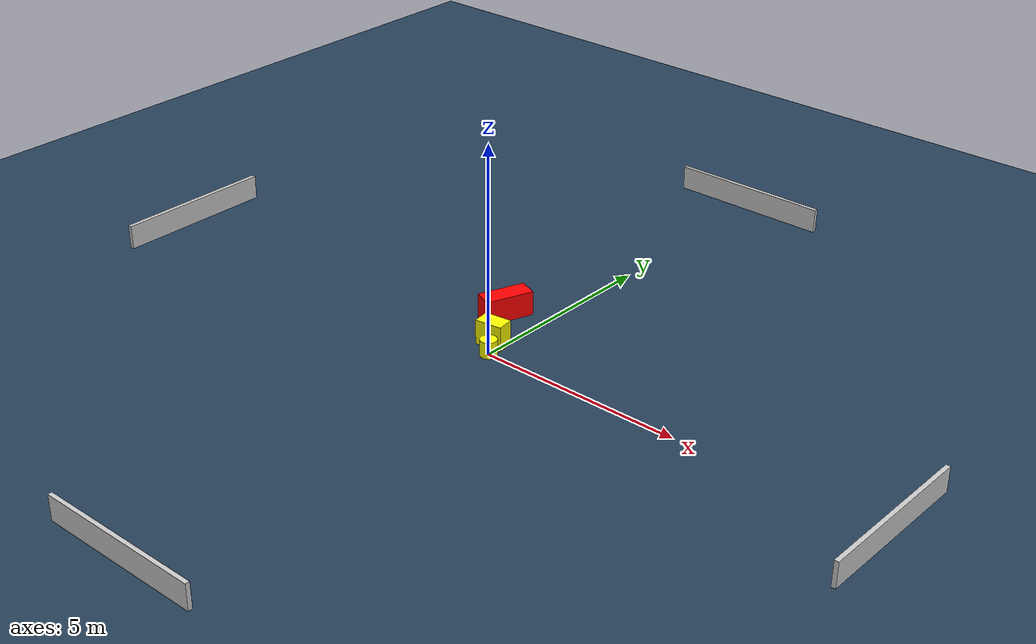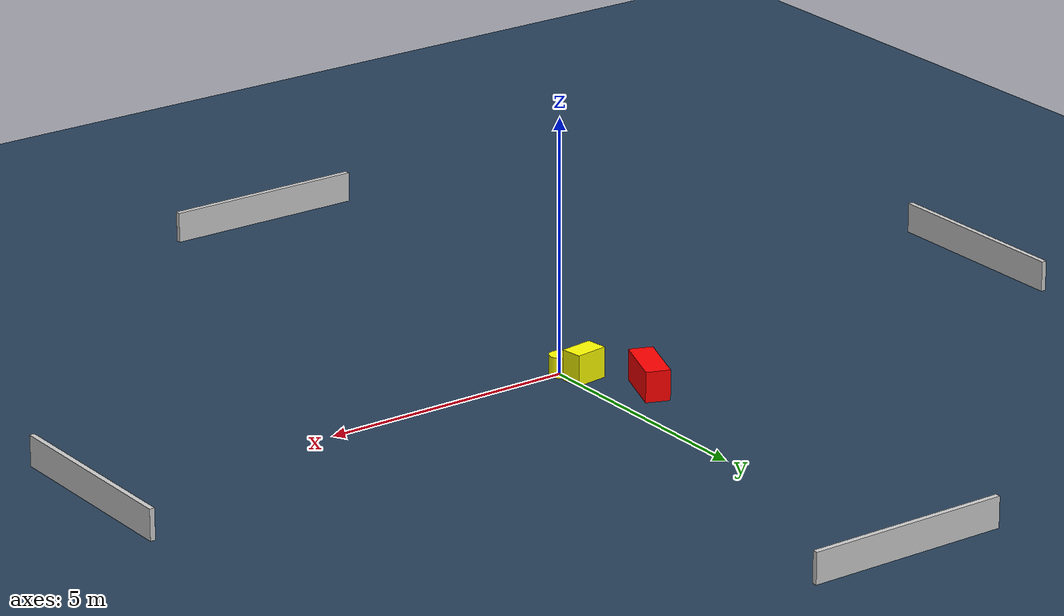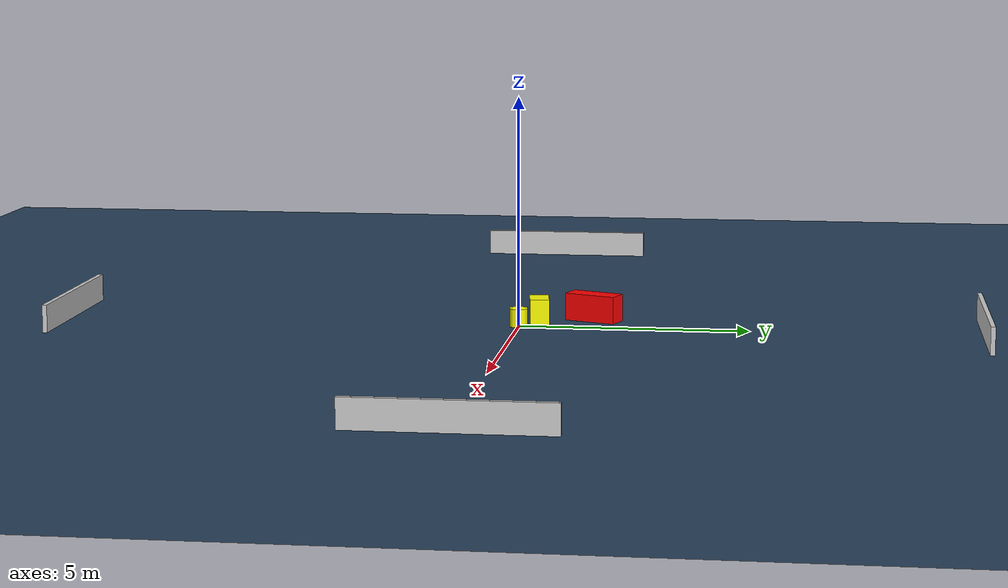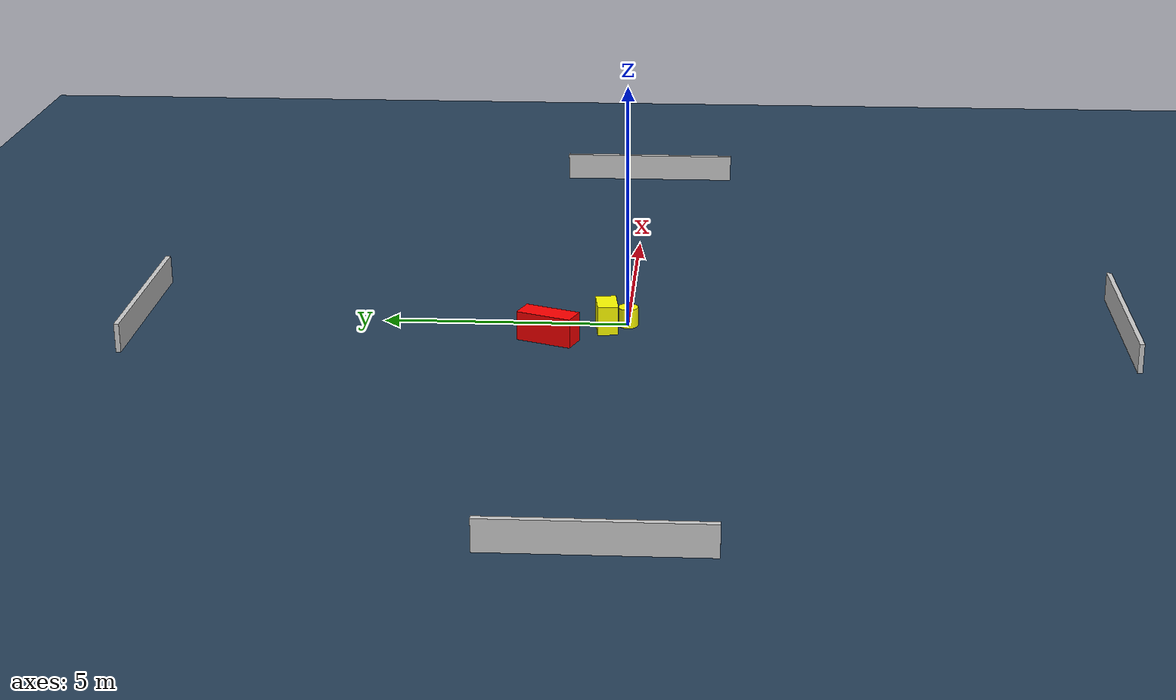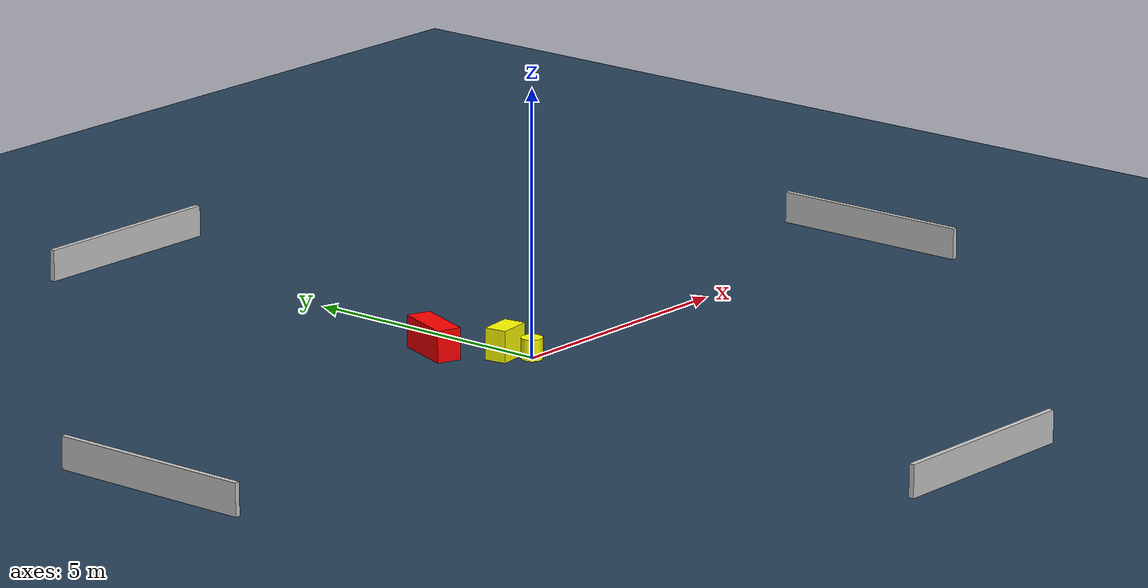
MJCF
<?xml version="1.0" ?>
<mujoco model="generated_environment">
  <option timestep="0.01" integrator="RK4" cone="elliptic"/>
  <default>
    <geom density="1"/>
  </default>
  <asset>
    <texture builtin="gradient" height="3072" name="skybox" rgb1="0.3 0.5 0.7" rgb2="0 0 0" type="skybox" width="512"/>
    <texture builtin="checker" height="300" name="groundplane" rgb1="0.2 0.3 0.4" rgb2="0.1 0.2 0.3" type="2d" width="300"/>
    <material name="groundplane" reflectance="0.2" texrepeat="5 5" texture="groundplane"/>
  </asset>
  <worldbody>
    <light dir="0 0 -1" directional="true" pos="0 0 1.5"/>
    <geom condim="3" friction="0.5 0.005 0.001" material="groundplane" name="floor" pos="0 0 0" size="0 0 0.05" type="plane"/>
    <body name="walls">
      <geom name="wall_1" condim="4" pos="-10.0 0.0 0.3" rgba="0.800000011920929 0.800000011920929 0.800000011920929 1.0" size="0.05 2.0 0.3" type="box"/>
      <geom name="wall_2" condim="4" pos="10.0 0.0 0.3" rgba="0.800000011920929 0.800000011920929 0.800000011920929 1.0" size="0.05 2.0 0.3" type="box"/>
      <geom name="wall_3" condim="4" pos="0.0 -10.0 0.3" rgba="0.800000011920929 0.800000011920929 0.800000011920929 1.0" size="2.0 0.05 0.3" type="box"/>
      <geom name="wall_4" condim="4" pos="0.0 10.0 0.3" rgba="0.800000011920929 0.800000011920929 0.800000011920929 1.0" size="2.0 0.05 0.3" type="box"/>
    </body>
    <body name="robot">
      <joint name="joint_x" type="slide" pos="0 0 0" axis="1 0 0"/>
      <joint name="joint_y" type="slide" pos="0 0 0" axis="0 1 0"/>
      <geom name="robot" type="cylinder" pos="0.0 0.0 0.2" size="0.2 0.2 0.0" mass="5.0" friction="1.0 0.005 0.0001" condim="4" rgba="1.0 1.0 0.0 1.0"/>
    </body>
    <body name="obstacle_1_movable">
      <geom name="obstacle_1_movable" condim="4" pos="-0.24482108053133508 0.42470324639523166 0.3" euler="0 0 97.73063278478222" friction="0.0 0.005 0.001" rgba="1.0 1.0 0.0 1.0" size="0.20932630537852961 0.3278580736230492 0.3" type="box" mass="0.1"/>
      <joint type="free"/>
    </body>
    <body name="obstacle_2_static">
      <geom name="obstacle_2_static" condim="4" pos="-0.8867738760016419 1.5623970217548684 0.3" euler="0 0 249.05624588877126" friction="0.0 0.005 0.001" rgba="1.0 0.0 0.0 1.0" size="0.584425315876389 0.23588440890992146 0.3" type="box"/>
    </body>
  </worldbody>
  <actuator>
    <motor name="actuator_x" joint="joint_x" gear="1" ctrlrange="-1 1"/>
    <motor name="actuator_y" joint="joint_y" gear="1" ctrlrange="-1 1"/>
  </actuator>
</mujoco>
